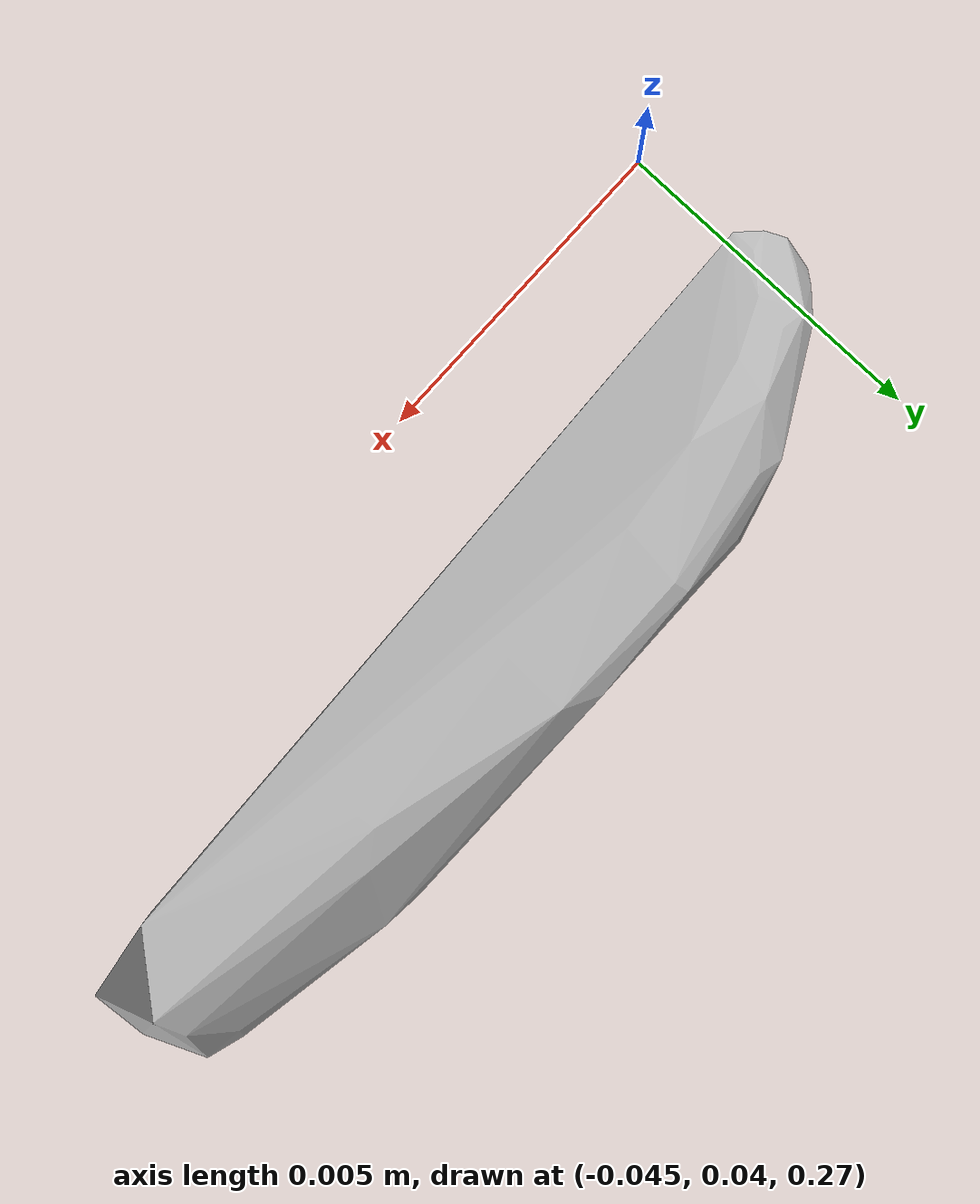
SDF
<?xml version="1.0"?>
<sdf version="1.7">
  <model name="vascular_partexport017">
    <link name="vascular_partexport017_body">
      <visual name="vascular_partexport017_visual">
        <geometry>
          <mesh>
            <uri>vascular_partexport017.obj</uri>
          </mesh>
        </geometry>
      </visual>
      <collision name="vascular_partexport017_collision">
        <geometry>
          <mesh>
            <uri>vascular_partexport017.obj</uri>
          </mesh>
        </geometry>
      </collision>
    </link>
    <frame name="vascular_partexport017_center">
      <pose relative_to="vascular_partexport017_body">0 0 0 0 0 0</pose>
    </frame>
  </model>
</sdf>
